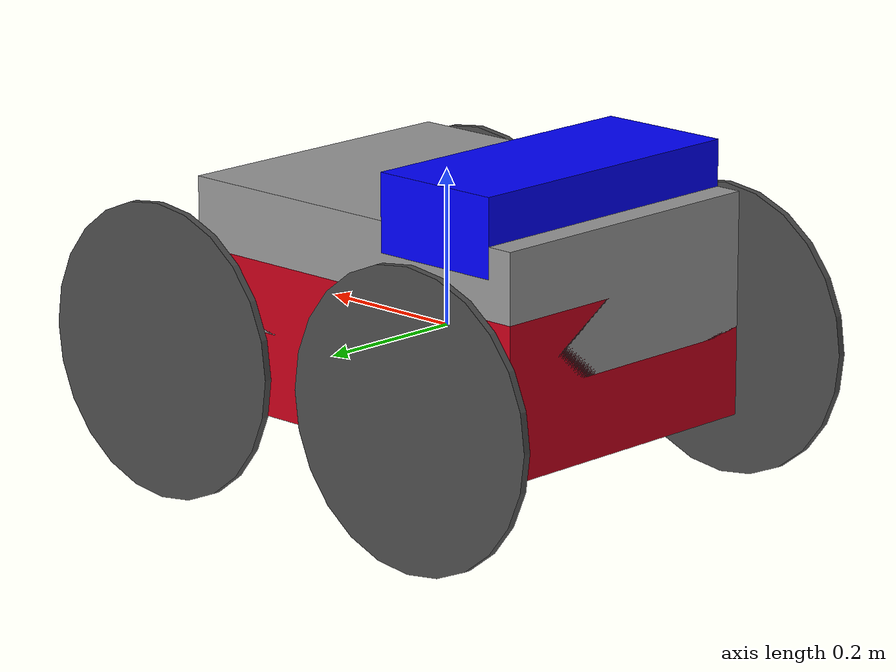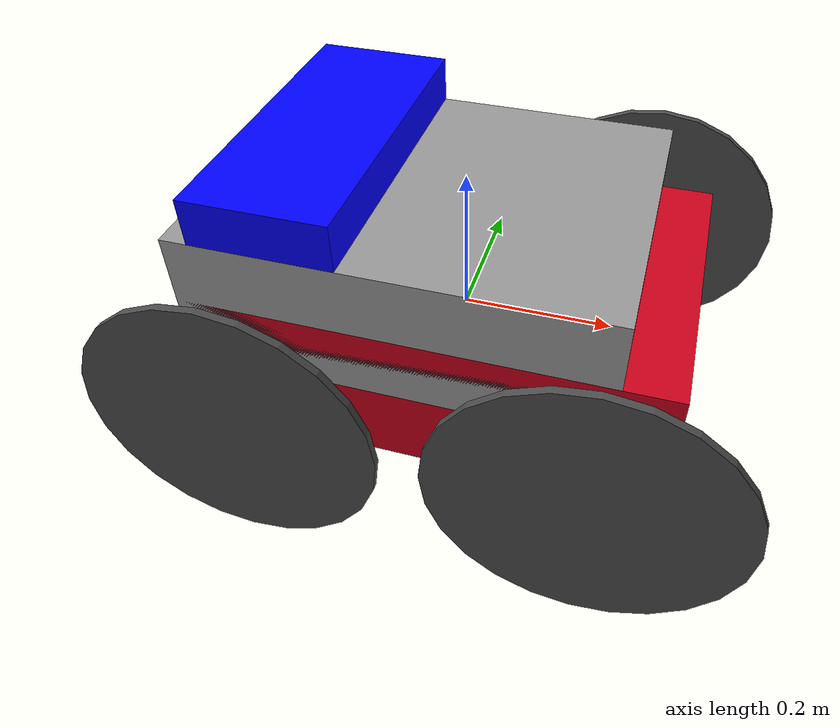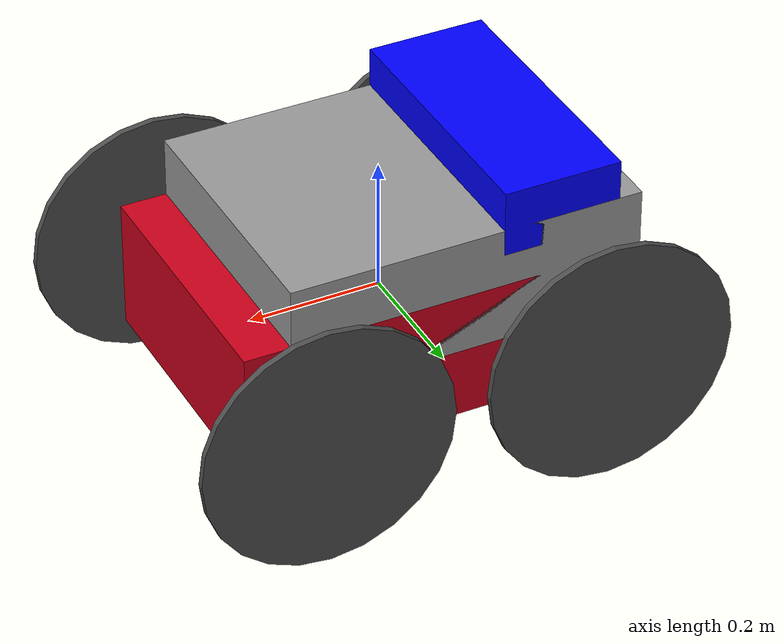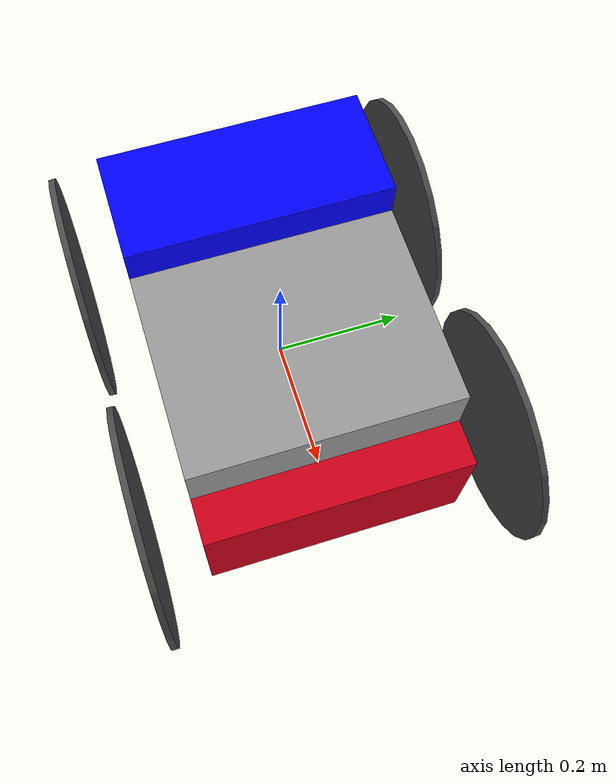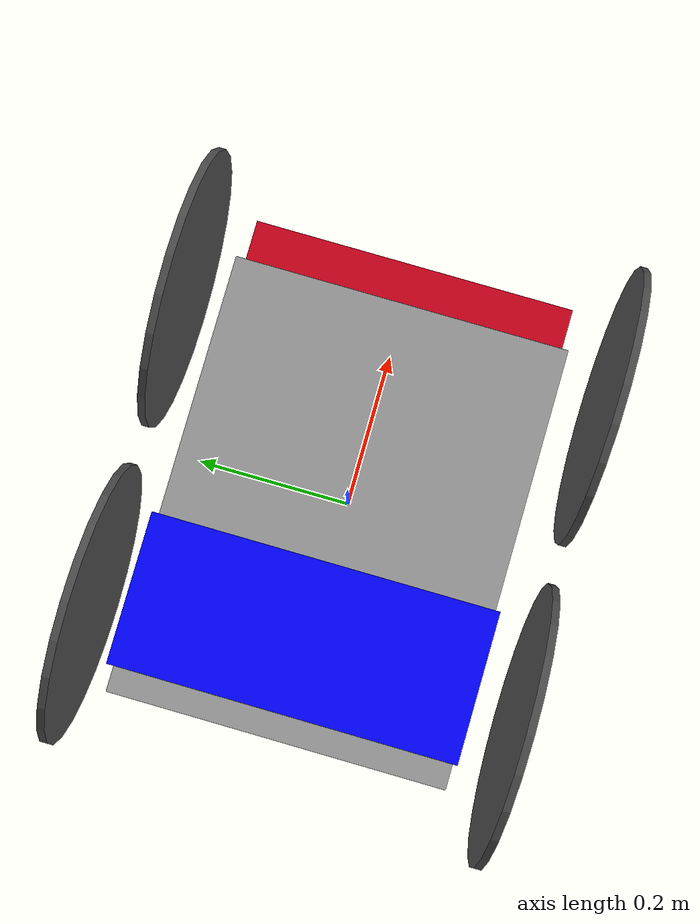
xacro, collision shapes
<?xml version="1.0"?>
<robot xmlns:xacro="http://www.ros.org/wiki/xacro" name="robot">
  <xacro:include filename="$(find robot_description)/urdf/robot_utils.urdf.xacro" />

  <!-- Arguments -->
  <xacro:arg name="wheel_joint_type" default="continuous" />
  <xacro:arg name="use_diff_drive_plugin" default="true" />

  <!-- Includes -->
  <!-- This loads a bunch of xacro properties -->
  <xacro:include filename="$(find robot_description)/urdf/properties.urdf.xacro" />

  <!-- This load the diff drive plugin -->
  <xacro:include filename="$(find robot_description)/urdf/robot_gz_diff_drive_plugin.urdf.xacro" />

  <!-- This loads the robot -->
  <xacro:include filename="$(find robot_description)/urdf/robot.urdf.xacro" />

  <!-- Include the diff drive plugin if needed -->
  <xacro:if value="$(arg use_diff_drive_plugin)">
    <xacro:robot_gz_diff_drive_plugin />
  </xacro:if>

  <xacro:robot wheel_joint_type="$(arg wheel_joint_type)" />

</robot>

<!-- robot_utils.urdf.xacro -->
<robot xmlns:xacro="http://www.ros.org/wiki/xacro">

    <!--   Inertia definitions -->
    <xacro:macro name="cylinder_inertia" params="m r h">
        <inertia
            ixx="${m*(3*r*r+h*h)/12}"
            ixy="0"
            ixz="0"
            iyy="${m*(3*r*r+h*h)/12}"
            iyz="0"
            izz="${m*r*r/2}"
        />
    </xacro:macro>
    <xacro:macro name="box_inertia" params="m x y z">
        <inertia
            ixx="${m*(y*y+z*z)/12}"
            ixy="0"
            ixz="0"
            iyy="${m*(x*x+z*z)/12}"
            iyz="0"
            izz="${m*(x*x+z*z)/12}"
        />
    </xacro:macro>
    <xacro:macro name="sphere_inertia" params="m r">
        <inertia
            ixx="${2*m*r*r/5}"
            ixy="0"
            ixz="0"
            iyy="${2*m*r*r/5}"
            iyz="0"
            izz="${2*m*r*r/5}"
        />
    </xacro:macro>

    <!-- Materials -->
    <material name="black">
        <color rgba="0 0 0 ${255/255}" />
    </material>
    <material name="dark_grey">
        <color rgba="0 0 0 ${155/255} ${255/255}" />
    </material>
    <material name="blue">
        <color rgba="0 0 ${200/255} ${255/255}" />
    </material>
    <material name="green">
        <color rgba="0 ${200/255} 0 ${255/255}" />
    </material>
    <material name="grey">
        <color rgba="${50/255} ${50/255} ${50/255} ${255/255}" />
    </material>
    <material name="orange">
        <color rgba="${255/255} ${108/255} ${10/255} ${255/255}" />
    </material>
    <material name="brown">
        <color rgba="${222/255} ${207/255} ${195/255} ${255/255}" />
    </material>
    <material name="red">
        <color rgba="${200/255} 0 0 ${255/255}" />
    </material>
    <material name="white">
        <color rgba="${255/255} ${255/255} ${255/255} ${255/255}" />
    </material>

</robot>

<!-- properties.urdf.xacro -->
<robot xmlns:xacro="http://www.ros.org/wiki/xacro" name="robot">

    <xacro:property name="base_link_name" value="base_link" />
    <xacro:property name="chassisHeight" value="0.197" />
    <xacro:property name="chassisLength" value="0.605" />
    <xacro:property name="chassisWidth" value="0.410" />
    <xacro:property name="chassisMass" value="40" />
    <xacro:property name="M_PI" value="3.14159265358" />

    <xacro:property name="topXOffset" value="-0.035" />
    <xacro:property name="topHeight" value="0.180" />
    <xacro:property name="topLength" value="0.535" />
    <xacro:property name="topWidth" value="0.410" />

    <xacro:property name="topExtensionHeight" value="0.1" />
    <xacro:property name="topExtensionLength" value="0.535" />
    <xacro:property name="topExtensionWidth" value="0.410" />

    <xacro:property name="wheelWidth" value="0.1" />
    <xacro:property name="wheelRadius" value="0.19" />
    <xacro:property name="frontWheelX" value="0.2159" />
    <xacro:property name="backWheelX" value="-0.2159" />
    <xacro:property name="wheelClearance" value="0.03" />
    <xacro:property name="wheelHeight" value="0.08" />
    <xacro:property name="wheelMass" value="5" />
</robot>

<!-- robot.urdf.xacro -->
<robot xmlns:xacro="http://www.ros.org/wiki/xacro" name="robot">
    <!-- Model macros -->
    <xacro:macro name="wheel" params="prefix X Y wheel_joint_type friction_coeff:=0.2">
        <joint name="${prefix}_WHEEL_JOINT" type="${wheel_joint_type}">
            <parent link="${base_link_name}" />
            <child link="${prefix}_WHEEL" />
            <origin xyz="${X} ${Y} ${wheelHeight - chassisHeight/2.0}" rpy="-${0.5*M_PI} 0 0" />
            <axis xyz="0 0 1" rpy="0 0 0" />
            <dynamics damping="1.0" friction="0.0" />
            <limit effort="100" velocity="10" />
            <joint_properties damping="0.2" friction="0.2" />
        </joint>

        <link name="${prefix}_WHEEL">
            <collision>
                <origin xyz="0 0 0" rpy="0 0 0" />
                <geometry>
                    <cylinder length="${wheelWidth/10}" radius="${wheelRadius}" />
                </geometry>
            </collision>
            <visual>
                <origin xyz="0 0 0" rpy="1.570796 0  0" />
                <geometry>
                    <mesh filename="file://$(find robot_description)/urdf/meshes/wheel.dae" />
                </geometry>
            </visual>
            <inertial>
                <origin xyz="0 0 0" rpy="0 0 0" />
                <mass value="${wheelMass}" />
                <xacro:cylinder_inertia m="${wheelMass}" r="${wheelRadius}" h="${wheelWidth}" />
            </inertial>
        </link>

        <gazebo reference="${prefix}_WHEEL">
            <mu1 value="${friction_coeff}" />
            <mu2 value="${friction_coeff}" />
            <fdir1 value="1 0 0" />
            <kp>10000000.0</kp>
            <kd>1.0</kd>
            <minDepth>0.005</minDepth>
            <maxVel>100.0</maxVel>
            <material>Gazebo/DarkGrey</material>
        </gazebo>
    </xacro:macro>

    <xacro:macro name="chassis">
        <link name="${base_link_name}">
            <collision>
                <origin xyz="0 0 0" rpy="0 0 0" />
                <geometry>
                    <box size="${chassisLength} ${chassisWidth} ${chassisHeight}" />
                </geometry>
            </collision>
            <visual>
                <origin xyz="0 0 0" rpy="0 0 0" />
                <geometry>
                    <box size="${chassisLength} ${chassisWidth} ${chassisHeight}" />
                </geometry>
                <material name="base_material">
                    <color rgba="0.8 0.0 0.1 1.0" />
                </material>
            </visual>
        </link>

        <link name="top">
            <collision>
                <origin xyz="${topXOffset} 0 0" rpy="0 0 0" />
                <geometry>
                    <box size="${topLength} ${topWidth} ${topHeight}" />
                </geometry>
            </collision>
            <visual>
                <origin xyz="${topXOffset} 0 0" rpy="0 0 0" />
                <geometry>
                    <box size="${topLength} ${topWidth} ${topHeight}" />
                </geometry>
            </visual>
        </link>

        <gazebo reference="top">
            <material>Gazebo/Grey</material>
        </gazebo>

        <gazebo reference="${base_link_name}">
            <material>Gazebo/Red</material>
        </gazebo>

        <joint name="top_to_base_link" type="fixed">
            <parent link="${base_link_name}" />
            <child link="top" />
            <origin xyz="0.0 0.0 ${chassisHeight/2.0}" rpy="0 0 0" />
        </joint>

        <!-- Fixed joint to add dummy inertia link -->
        <joint name="base_to_base_inertia" type="fixed">
            <parent link="${base_link_name}" />
            <child link="base_inertia" />
            <origin xyz="0 0 0" rpy="0 0 0" />
        </joint>

        <!-- Dummy inertia link, because KDL cannot have inertia on the base link -->
        <link name="base_inertia">
            <inertial>
                <origin xyz="0 0 0" rpy="0 0 0" />
                <mass value="${chassisMass}" />
                <xacro:box_inertia m="${chassisMass}"
                    x="${chassisLength}"
                    y="${chassisWidth}"
                    z="${chassisHeight}" />
            </inertial>
        </link>

        <link name="top_extension">
            <collision>
                <origin xyz="0 0 0" rpy="0 0 0" />
                <geometry>
                    <box size="${topExtensionLength/3} ${topExtensionWidth} ${topExtensionHeight}" />
                </geometry>
            </collision>
            <visual>
                <origin xyz="0 0 0" rpy="0 0 0" />
                <geometry>
                    <box size="${topExtensionLength/3} ${topExtensionWidth} ${topExtensionHeight}" />
                </geometry>
                <material name="extension_material">
                    <color rgba="0.0 0.0 1.0 1.0" /> <!-- Blue -->
                </material>
            </visual>
        </link>

        <gazebo reference="top_extension">
            <material>Gazebo/Blue</material>
        </gazebo>

        <joint name="top_extension_to_top" type="fixed">
            <parent link="top" />
            <child link="top_extension" />
            <origin xyz="-${topExtensionLength/3} 0 0.1" rpy="0 0 0" />
        </joint>

    </xacro:macro>

    <xacro:macro name="robot" params="wheel_joint_type:=continuous">
        <xacro:chassis />

        <xacro:wheel prefix="LF" X="${frontWheelX}"
            Y="${chassisWidth/2+wheelClearance+wheelWidth/2}"
            wheel_joint_type="${wheel_joint_type}"
            friction_coeff="0.7" />

        <xacro:wheel prefix="RF" X="${frontWheelX}"
            Y="${-chassisWidth/2-wheelClearance-wheelWidth/2}"
            wheel_joint_type="${wheel_joint_type}"
            friction_coeff="0.7" />

        <xacro:wheel prefix="LH" X="${backWheelX}"
            Y="${chassisWidth/2+wheelClearance+wheelWidth/2}"
            wheel_joint_type="${wheel_joint_type}"
            friction_coeff="0.7" />

        <xacro:wheel prefix="RH" X="${backWheelX}"
            Y="${-chassisWidth/2-wheelClearance-wheelWidth/2}"
            wheel_joint_type="${wheel_joint_type}"
            friction_coeff="0.7" />

        <!-- broadcast model state -->
        <gazebo>
            <plugin filename="gz-sim-pose-publisher-system" name="gz::sim::systems::PosePublisher">
                <publish_link_pose>false</publish_link_pose>
                <publish_nested_model_pose>true</publish_nested_model_pose>
                <update_frequency>50</update_frequency>
            </plugin>
        </gazebo>
    </xacro:macro>

    <xacro:include filename="$(find robot_description)/urdf/imu.urdf.xacro" />

    <!-- TODO Include the lidar mount and gazebo laser scan sensor xacro files and instantiate them -->
    <!-- Attached lidar mount link to the base link and add lidar sensor plugin to the lidar sensor frame -->
</robot>

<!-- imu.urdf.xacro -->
<robot xmlns:xacro="http://www.ros.org/wiki/xacro">
    <!-- IMU link -->
    <link name="imu_link">
        <inertial>
            <mass value="0.1" /> <!-- Adjust the mass as per your IMU -->
            <origin xyz="0 0 0" rpy="0 0 0" /> <!-- Adjust the position and orientation -->
            <inertia ixx="1e-6" ixy="0" ixz="0" iyy="1e-6" iyz="0" izz="1e-6" /> <!-- Placeholder values -->
        </inertial>
        <visual>
            <origin xyz="0 0 0" rpy="0 0 0" />
            <geometry>
                <box size="0.05 0.05 0.05" /> <!-- Adjust the size to match your IMU -->
            </geometry>
        </visual>
        <!-- IMU sensor configuration for Gazebo -->
    </link>

    <!-- Fixed joint for IMU -->
    <joint name="imu_joint" type="fixed">
        <parent link="base_link" /> <!-- Adjust the parent link as needed -->
        <child link="imu_link" />
        <origin xyz="0 0 0" rpy="0 0 0" /> <!-- Adjust the position and orientation -->
    </joint>

    <gazebo reference="imu_link">
        <sensor type="imu" name="imu_sensor">
            <always_on>1</always_on>
            <update_rate>50.0</update_rate> <!-- Adjust the update rate as needed -->
            <topic>imu</topic>
            <visualize>true</visualize>
            <gz_frame_id>imu_link</gz_frame_id>
            <imu>
                <angular_velocity>
                    <x>
                        <noise type="gaussian">
                            <mean>0.0</mean>
                            <stddev>0.02</stddev>
                        </noise>
                    </x>
                    <y>
                        <noise type="gaussian">
                            <mean>0.0</mean>
                            <stddev>0.02</stddev>
                        </noise>
                    </y>
                    <z>
                        <noise type="gaussian">
                            <mean>0.0</mean>
                            <stddev>0.02</stddev>
                        </noise>
                    </z>
                </angular_velocity>
                <linear_acceleration>
                    <x>
                        <noise type="gaussian">
                            <mean>0.0</mean>
                            <stddev>0.02</stddev>
                        </noise>
                    </x>
                    <y>
                        <noise type="gaussian">
                            <mean>0.0</mean>
                            <stddev>0.02</stddev>
                        </noise>
                    </y>
                    <z>
                        <noise type="gaussian">
                            <mean>0.0</mean>
                            <stddev>0.02</stddev>
                        </noise>
                    </z>
                </linear_acceleration>
            </imu>
        </sensor>
    </gazebo>

</robot>
